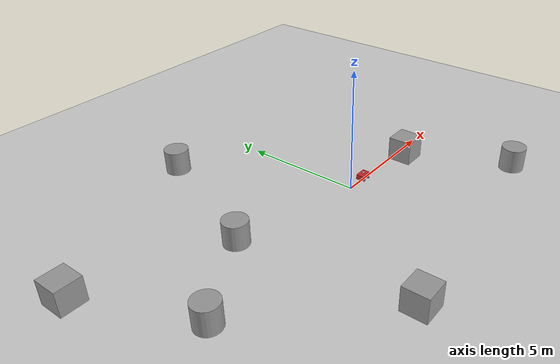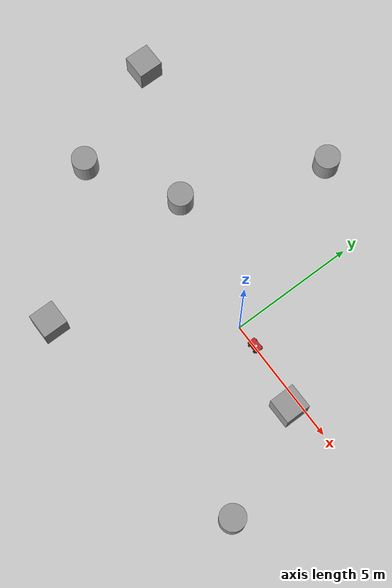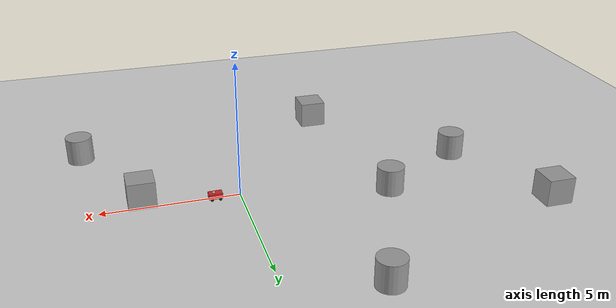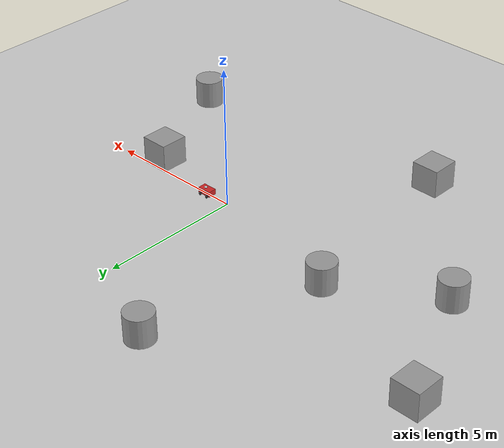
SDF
<sdf version="1.7">
 <world name="default">
  <light name="sun" type="directional">
   <pose>0 0 10 0 -0 0</pose>
   <diffuse>0.8 0.8 0.8 1</diffuse>
   <specular>0.2 0.2 0.2 1</specular>
   <attenuation>
    <range>1000</range>
    <constant>0.9</constant>
    <linear>0.01</linear>
    <quadratic>0.001</quadratic>
   </attenuation>
   <direction>-0.5 0.1 -0.9</direction>
   <spot><inner_angle>0</inner_angle><outer_angle>0</outer_angle><falloff>0</falloff></spot>
  </light>
  <model name="ground_plane">
   <static>1</static>
   <link name="link">
    <collision name="collision">
     <geometry><plane><normal>0 0 1</normal><size>100 100</size></plane></geometry>
     <surface><friction><ode><mu>100</mu><mu2>50</mu2></ode></friction></surface>
    </collision>
    <visual name="visual">
     <cast_shadows>0</cast_shadows>
     <geometry><plane><normal>0 0 1</normal><size>100 100</size></plane></geometry>
     <material>
      <script><uri>file://media/materials/scripts/gazebo.material</uri><name>Gazebo/Grey</name></script>
     </material>
    </visual>
   </link>
  </model>
  <gravity>0 0 -9.8</gravity>
  <magnetic_field>6e-06 2.3e-05 -4.2e-05</magnetic_field>
  <atmosphere type="adiabatic"/>
  <physics type="ode">
   <max_step_size>0.001</max_step_size>
   <real_time_factor>1</real_time_factor>
   <real_time_update_rate>1000</real_time_update_rate>
  </physics>
  <scene><ambient>0.4 0.4 0.4 1</ambient><background>0.7 0.7 0.7 1</background><shadows>1</shadows></scene>
  <spherical_coordinates>
   <surface_model>EARTH_WGS84</surface_model>
   <latitude_deg>0</latitude_deg>
   <longitude_deg>0</longitude_deg>
   <elevation>0</elevation>
   <heading_deg>0</heading_deg>
  </spherical_coordinates>
  <model name="unit_box">
   <pose>-10.6452 3.41751 0.499995 -0 -1e-05 -0.000218</pose>
   <link name="link">
    <inertial>
     <mass>1</mass>
     <inertia>
      <ixx>0.166667</ixx>
      <ixy>0</ixy>
      <ixz>0</ixz>
      <iyy>0.166667</iyy>
      <iyz>0</iyz>
      <izz>0.166667</izz>
     </inertia>
    </inertial>
    <collision name="collision"><geometry><box><size>1 1 1</size></box></geometry></collision>
    <visual name="visual">
     <geometry><box><size>1 1 1</size></box></geometry>
     <material>
      <script><name>Gazebo/Grey</name><uri>file://media/materials/scripts/gazebo.material</uri></script>
     </material>
    </visual>
   </link>
  </model>
  <model name="unit_box_0">
   <pose>3.4815 -0.432565 0.499995 -1e-05 -0 -0</pose>
   <link name="link">
    <inertial>
     <mass>1</mass>
     <inertia>
      <ixx>0.166667</ixx>
      <ixy>0</ixy>
      <ixz>0</ixz>
      <iyy>0.166667</iyy>
      <iyz>0</iyz>
      <izz>0.166667</izz>
     </inertia>
    </inertial>
    <collision name="collision"><geometry><box><size>1 1 1</size></box></geometry></collision>
    <visual name="visual">
     <geometry><box><size>1 1 1</size></box></geometry>
     <material>
      <script><name>Gazebo/Grey</name><uri>file://media/materials/scripts/gazebo.material</uri></script>
     </material>
    </visual>
   </link>
  </model>
  <model name="unit_box_1">
   <pose>-4.27647 -5.54606 0.499995 -0 -1e-05 -0.000225</pose>
   <link name="link">
    <inertial>
     <mass>1</mass>
     <inertia>
      <ixx>0.166667</ixx>
      <ixy>0</ixy>
      <ixz>0</ixz>
      <iyy>0.166667</iyy>
      <iyz>0</iyz>
      <izz>0.166667</izz>
     </inertia>
    </inertial>
    <collision name="collision"><geometry><box><size>1 1 1</size></box></geometry></collision>
    <visual name="visual">
     <geometry><box><size>1 1 1</size></box></geometry>
     <material>
      <script><name>Gazebo/Grey</name><uri>file://media/materials/scripts/gazebo.material</uri></script>
     </material>
    </visual>
   </link>
  </model>
  <model name="unit_cylinder">
   <pose>-8.67512 -0.83922 0.499997 4e-06 3e-06 -2e-06</pose>
   <link name="link">
    <inertial>
     <mass>1</mass>
     <inertia><ixx>0.145833</ixx><ixy>0</ixy><ixz>0</ixz><iyy>0.145833</iyy><iyz>0</iyz><izz>0.125</izz></inertia>
    </inertial>
    <collision name="collision">
     <geometry><cylinder><radius>0.5</radius><length>1</length></cylinder></geometry>
    </collision>
    <visual name="visual">
     <geometry><cylinder><radius>0.5</radius><length>1</length></cylinder></geometry>
     <material>
      <script><name>Gazebo/Grey</name><uri>file://media/materials/scripts/gazebo.material</uri></script>
     </material>
    </visual>
   </link>
  </model>
  <model name="unit_cylinder_0">
   <pose>-3.13097 6.6323 0.499994 -4e-06 -3e-06 -1e-06</pose>
   <link name="link">
    <inertial>
     <mass>1</mass>
     <inertia><ixx>0.145833</ixx><ixy>0</ixy><ixz>0</ixz><iyy>0.145833</iyy><iyz>0</iyz><izz>0.125</izz></inertia>
    </inertial>
    <collision name="collision">
     <geometry><cylinder><radius>0.5</radius><length>1</length></cylinder></geometry>
    </collision>
    <visual name="visual">
     <geometry><cylinder><radius>0.5</radius><length>1</length></cylinder></geometry>
     <material>
      <script><name>Gazebo/Grey</name><uri>file://media/materials/scripts/gazebo.material</uri></script>
     </material>
    </visual>
   </link>
  </model>
  <model name="unit_cylinder_1">
   <pose>5.42373 -4.48861 0.499998 3e-06 -1e-06 0</pose>
   <link name="link">
    <inertial>
     <mass>1</mass>
     <inertia><ixx>0.145833</ixx><ixy>0</ixy><ixz>0</ixz><iyy>0.145833</iyy><iyz>0</iyz><izz>0.125</izz></inertia>
    </inertial>
    <collision name="collision">
     <geometry><cylinder><radius>0.5</radius><length>1</length></cylinder></geometry>
    </collision>
    <visual name="visual">
     <geometry><cylinder><radius>0.5</radius><length>1</length></cylinder></geometry>
     <material>
      <script><name>Gazebo/Grey</name><uri>file://media/materials/scripts/gazebo.material</uri></script>
     </material>
    </visual>
   </link>
  </model>
  <audio><device>default</device></audio>
  <model name="unit_cylinder_0_clone">
   <pose>-5.29339 1.22652 0.499997 0 0 -1e-06</pose>
   <link name="link">
    <inertial>
     <mass>1</mass>
     <inertia><ixx>0.145833</ixx><ixy>0</ixy><ixz>0</ixz><iyy>0.145833</iyy><iyz>0</iyz><izz>0.125</izz></inertia>
    </inertial>
    <collision name="collision">
     <geometry><cylinder><radius>0.5</radius><length>1</length></cylinder></geometry>
    </collision>
    <visual name="visual">
     <geometry><cylinder><radius>0.5</radius><length>1</length></cylinder></geometry>
     <material>
      <script><name>Gazebo/Grey</name><uri>file://media/materials/scripts/gazebo.material</uri></script>
     </material>
    </visual>
   </link>
  </model>
  <model name="my_bot">
   <link name="base_link">
    <inertial>
     <pose>0.216667 0 0.095556 0 -0 0</pose>
     <mass>0.9</mass>
     <inertia>
      <ixx>0.0162114</ixx>
      <ixy>0</ixy>
      <ixz>0.000933333</ixz>
      <iyy>0.0238514</iyy>
      <iyz>-1.39278e-20</iyz>
      <izz>0.0285683</izz>
     </inertia>
    </inertial>
    <collision name="base_link_fixed_joint_lump__chassis_collision">
     <pose>0.15 0 0.1 0 -0 0</pose>
     <geometry><box><size>0.5 0.3 0.2</size></box></geometry>
    </collision>
    <collision name="base_link_fixed_joint_lump__laser_frame_collision_1">
     <pose>0.2 0 0.21 0 -0 0</pose>
     <geometry><cylinder><length>0.04</length><radius>0.05</radius></cylinder></geometry>
    </collision>
    <collision name="base_link_fixed_joint_lump__left_caster_wheel_collision_2">
     <pose>0.3 0.175 0 -1.5708 0 0</pose>
     <geometry><cylinder><length>0.04</length><radius>0.05</radius></cylinder></geometry>
     <surface><friction><ode><mu>0.01</mu><mu2>0.01</mu2></ode></friction></surface>
    </collision>
    <collision name="base_link_fixed_joint_lump__right_caster_wheel_collision_3">
     <pose>0.3 -0.175 0 1.5708 -0 0</pose>
     <geometry><cylinder><length>0.04</length><radius>0.05</radius></cylinder></geometry>
     <surface><friction><ode><mu>0.01</mu><mu2>0.01</mu2></ode></friction></surface>
    </collision>
    <visual name="base_link_fixed_joint_lump__chassis_visual">
     <pose>0.15 0 0.1 0 -0 0</pose>
     <geometry><box><size>0.5 0.3 0.2</size></box></geometry>
     <material>
      <script><name>Gazebo/Red</name><uri>file://media/materials/scripts/gazebo.material</uri></script>
     </material>
    </visual>
    <visual name="base_link_fixed_joint_lump__camera_link_visual_1">
     <pose>0.405 0 0.1 0 -0 0</pose>
     <geometry><box><size>0.01 0.03 0.03</size></box></geometry>
     <material>
      <script><name>Gazebo/White</name><uri>file://media/materials/scripts/gazebo.material</uri></script>
     </material>
    </visual>
    <visual name="base_link_fixed_joint_lump__laser_frame_visual_2">
     <pose>0.2 0 0.21 0 -0 0</pose>
     <geometry><cylinder><length>0.04</length><radius>0.05</radius></cylinder></geometry>
     <material>
      <script><name>Gazebo/White</name><uri>file://media/materials/scripts/gazebo.material</uri></script>
     </material>
    </visual>
    <visual name="base_link_fixed_joint_lump__left_caster_wheel_visual_3">
     <pose>0.3 0.175 0 -1.5708 0 0</pose>
     <geometry><cylinder><length>0.04</length><radius>0.05</radius></cylinder></geometry>
     <material>
      <script><name>Gazebo/Black</name><uri>file://media/materials/scripts/gazebo.material</uri></script>
     </material>
    </visual>
    <visual name="base_link_fixed_joint_lump__realsense_link_visual_4">
     <pose>0.4 0 0.15 0 -0 0</pose>
     <geometry><box><size>0.05 0.05 0.05</size></box></geometry>
     <material>
      <script><name>Gazebo/White</name><uri>file://media/materials/scripts/gazebo.material</uri></script>
     </material>
    </visual>
    <visual name="base_link_fixed_joint_lump__right_caster_wheel_visual_5">
     <pose>0.3 -0.175 0 1.5708 -0 0</pose>
     <geometry><cylinder><length>0.04</length><radius>0.05</radius></cylinder></geometry>
     <material>
      <script><name>Gazebo/Black</name><uri>file://media/materials/scripts/gazebo.material</uri></script>
     </material>
    </visual>
    <sensor name="camera" type="depth">
     <visualize>1</visualize>
     <update_rate>10</update_rate>
     <camera>
      <horizontal_fov>1.089</horizontal_fov>
      <image><format>B8G8R8</format><width>640</width><height>480</height></image>
      <clip><near>0.05</near><far>8</far></clip>
     </camera>
     <plugin name="camera_controller" filename="libgazebo_ros_camera.so">
      <frame_name>camera_optical_link</frame_name>
      <depth_camera>1</depth_camera>
      <point_cloud_topic>depth/points</point_cloud_topic>
      <depthTopicName>depth/image_raw</depthTopicName>
      <min_depth>0.1</min_depth>
      <max_depth>100</max_depth>
     </plugin>
     <pose>0.405 0 0.1 0 -0 0</pose>
    </sensor>
    <sensor name="laser" type="ray">
     <visualize>1</visualize>
     <update_rate>10</update_rate>
     <ray>
      <scan>
       <horizontal>
        <samples>360</samples>
        <min_angle>-3.14</min_angle>
        <max_angle>3.14</max_angle>
        <resolution>1</resolution>
       </horizontal>
       <vertical><samples>1</samples><min_angle>0</min_angle><max_angle>0</max_angle></vertical>
      </scan>
      <range><min>0.3</min><max>12</max></range>
     </ray>
     <plugin name="laser_controller" filename="libgazebo_ros_ray_sensor.so">
      <ros><argument>~/out:=scan</argument></ros>
      <output_type>sensor_msgs/LaserScan</output_type>
      <frame_name>laser_frame</frame_name>
     </plugin>
     <pose>0.2 0 0.21 0 -0 0</pose>
    </sensor>
    <plugin filename="librealsense_gazebo_plugin.so" name="realsense_plugin">
     <prefix>camera</prefix>
     <depthUpdateRate>30.0</depthUpdateRate>
     <colorUpdateRate>30.0</colorUpdateRate>
     <depthTopicName>aligned_depth_to_color/image_raw</depthTopicName>
     <colorTopicName>color/image_raw</colorTopicName>
     <pointCloud>1</pointCloud>
     <pointCloudTopicName>depth/color/points</pointCloudTopicName>
     <colorOpticalframeName>realsense_optical_link</colorOpticalframeName>
     <depthOpticalframeName>realsense_optical_link</depthOpticalframeName>
     <rangeMinDepth>0.3</rangeMinDepth>
     <rangeMaxDepth>5.0</rangeMaxDepth>
    </plugin>
   </link>
   <joint name="left_wheel_joint" type="revolute">
    <pose relative_to="base_link">0 0.175 0 -1.5708 0 0</pose>
    <parent>base_link</parent>
    <child>left_wheel</child>
    <axis>
     <xyz>0 0 1</xyz>
     <limit><lower>-1e+16</lower><upper>1e+16</upper></limit>
     <dynamics><spring_reference>0</spring_reference><spring_stiffness>0</spring_stiffness></dynamics>
    </axis>
   </joint>
   <link name="left_wheel">
    <pose relative_to="left_wheel_joint">0 0 0 0 -0 0</pose>
    <inertial>
     <mass>0.1</mass>
     <inertia>
      <ixx>7.58333e-05</ixx>
      <ixy>0</ixy>
      <ixz>0</ixz>
      <iyy>7.58333e-05</iyy>
      <iyz>0</iyz>
      <izz>0.000125</izz>
     </inertia>
    </inertial>
    <collision name="left_wheel_collision"><geometry><sphere><radius>0.05</radius></sphere></geometry></collision>
    <visual name="left_wheel_visual">
     <geometry><cylinder><length>0.04</length><radius>0.05</radius></cylinder></geometry>
     <material>
      <script><name>Gazebo/Black</name><uri>file://media/materials/scripts/gazebo.material</uri></script>
     </material>
    </visual>
   </link>
   <joint name="right_wheel_joint" type="revolute">
    <pose relative_to="base_link">0 -0.175 0 1.5708 -0 0</pose>
    <parent>base_link</parent>
    <child>right_wheel</child>
    <axis>
     <xyz>0 0 -1</xyz>
     <limit><lower>-1e+16</lower><upper>1e+16</upper></limit>
     <dynamics><spring_reference>0</spring_reference><spring_stiffness>0</spring_stiffness></dynamics>
    </axis>
   </joint>
   <link name="right_wheel">
    <pose relative_to="right_wheel_joint">0 0 0 0 -0 0</pose>
    <inertial>
     <mass>0.1</mass>
     <inertia>
      <ixx>7.58333e-05</ixx>
      <ixy>0</ixy>
      <ixz>0</ixz>
      <iyy>7.58333e-05</iyy>
      <iyz>0</iyz>
      <izz>0.000125</izz>
     </inertia>
    </inertial>
    <collision name="right_wheel_collision">
     <geometry><sphere><radius>0.05</radius></sphere></geometry>
    </collision>
    <visual name="right_wheel_visual">
     <geometry><cylinder><length>0.04</length><radius>0.05</radius></cylinder></geometry>
     <material>
      <script><name>Gazebo/Black</name><uri>file://media/materials/scripts/gazebo.material</uri></script>
     </material>
    </visual>
   </link>
   <static>0</static>
   <plugin name="gazebo_ros2_control" filename="libgazebo_ros2_control.so">
    <parameters>/home/rupesh/ros2_ws/install/ros2_slam_auto_navigation/share/ros2_slam_auto_navigation/config/my_controller.yaml</parameters>
   </plugin>
   <pose>0.767943 0.032649 0.049997 -1.6e-05 -2e-06 0.014003</pose>
  </model>
 </world>
</sdf>
